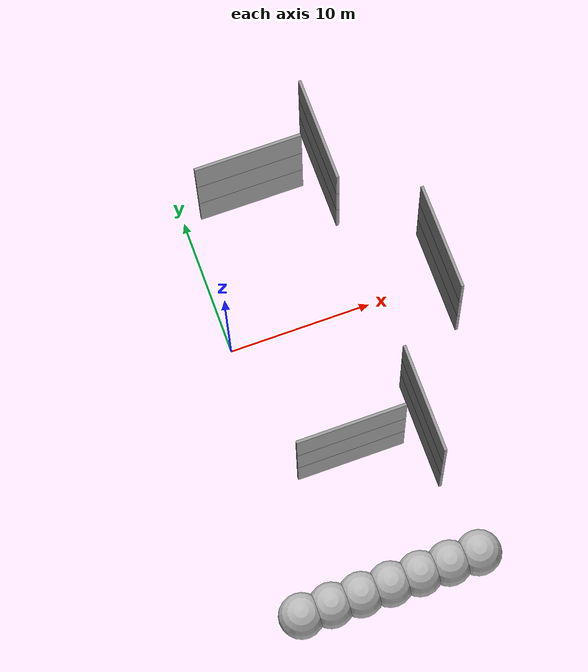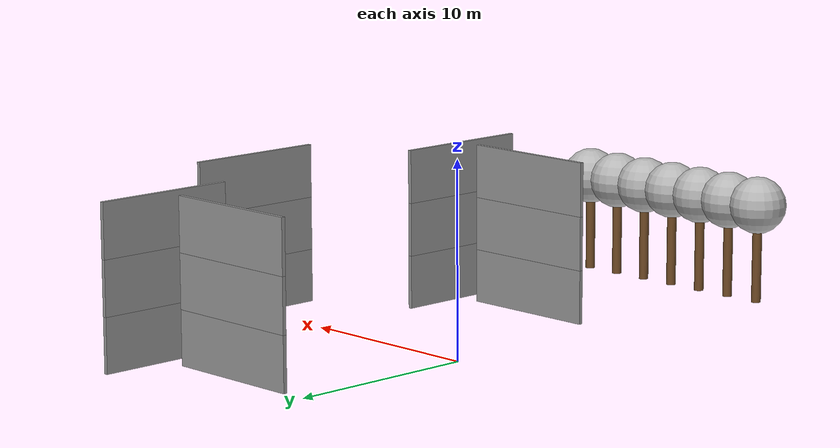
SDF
<sdf version="1.5">
 <world name="default">
  <model name="grey_wall_11">
   <static>1</static>
   <link name="link">
    <pose>0 0 1.4 0 -0 0</pose>
    <collision name="collision"><geometry><box><size>7.5 0.2 2.8</size></box></geometry></collision>
    <visual name="visual">
     <cast_shadows>0</cast_shadows>
     <geometry><box><size>7.5 0.2 2.8</size></box></geometry>
     <material>
      <script>
       <uri>model://grey_wall/materials/scripts</uri>
       <uri>model://grey_wall/materials/textures</uri>
       <name>vrc/grey_wall</name>
      </script>
     </material>
    </visual>
   </link>
   <pose>5.0 -10.0 0 0 -0 0</pose>
  </model>
  <model name="grey_wall_12">
   <static>1</static>
   <link name="link">
    <pose>0 0 1.4 0 -0 0</pose>
    <collision name="collision"><geometry><box><size>7.5 0.2 2.8</size></box></geometry></collision>
    <visual name="visual">
     <cast_shadows>0</cast_shadows>
     <geometry><box><size>7.5 0.2 2.8</size></box></geometry>
     <material>
      <script>
       <uri>model://grey_wall/materials/scripts</uri>
       <uri>model://grey_wall/materials/textures</uri>
       <name>vrc/grey_wall</name>
      </script>
     </material>
    </visual>
   </link>
   <pose>5.0 -10.0 2.8 0 -0 0</pose>
  </model>
  <model name="grey_wall_13">
   <static>1</static>
   <link name="link">
    <pose>0 0 1.4 0 -0 0</pose>
    <collision name="collision"><geometry><box><size>7.5 0.2 2.8</size></box></geometry></collision>
    <visual name="visual">
     <cast_shadows>0</cast_shadows>
     <geometry><box><size>7.5 0.2 2.8</size></box></geometry>
     <material>
      <script>
       <uri>model://grey_wall/materials/scripts</uri>
       <uri>model://grey_wall/materials/textures</uri>
       <name>vrc/grey_wall</name>
      </script>
     </material>
    </visual>
   </link>
   <pose>5.0 -10.0 5.6 0 -0 0</pose>
  </model>
  <model name="grey_wall_21">
   <static>1</static>
   <link name="link">
    <pose>0 0 1.4 0 -0 0</pose>
    <collision name="collision"><geometry><box><size>7.5 0.2 2.8</size></box></geometry></collision>
    <visual name="visual">
     <cast_shadows>0</cast_shadows>
     <geometry><box><size>7.5 0.2 2.8</size></box></geometry>
     <material>
      <script>
       <uri>model://grey_wall/materials/scripts</uri>
       <uri>model://grey_wall/materials/textures</uri>
       <name>vrc/grey_wall</name>
      </script>
     </material>
    </visual>
   </link>
   <pose>5.0 10.0 0 0 -0 0</pose>
  </model>
  <model name="grey_wall_22">
   <static>1</static>
   <link name="link">
    <pose>0 0 1.4 0 -0 0</pose>
    <collision name="collision"><geometry><box><size>7.5 0.2 2.8</size></box></geometry></collision>
    <visual name="visual">
     <cast_shadows>0</cast_shadows>
     <geometry><box><size>7.5 0.2 2.8</size></box></geometry>
     <material>
      <script>
       <uri>model://grey_wall/materials/scripts</uri>
       <uri>model://grey_wall/materials/textures</uri>
       <name>vrc/grey_wall</name>
      </script>
     </material>
    </visual>
   </link>
   <pose>5.0 10.0 2.8 0 -0 0</pose>
  </model>
  <model name="grey_wall_23">
   <static>1</static>
   <link name="link">
    <pose>0 0 1.4 0 -0 0</pose>
    <collision name="collision"><geometry><box><size>7.5 0.2 2.8</size></box></geometry></collision>
    <visual name="visual">
     <cast_shadows>0</cast_shadows>
     <geometry><box><size>7.5 0.2 2.8</size></box></geometry>
     <material>
      <script>
       <uri>model://grey_wall/materials/scripts</uri>
       <uri>model://grey_wall/materials/textures</uri>
       <name>vrc/grey_wall</name>
      </script>
     </material>
    </visual>
   </link>
   <pose>5.0 10.0 5.6 0 -0 0</pose>
  </model>
  <model name="grey_wall_41">
   <static>1</static>
   <link name="link">
    <pose>0 0 1.4 0 -0 0</pose>
    <collision name="collision"><geometry><box><size>7.5 0.2 2.8</size></box></geometry></collision>
    <visual name="visual">
     <cast_shadows>0</cast_shadows>
     <geometry><box><size>7.5 0.2 2.8</size></box></geometry>
     <material>
      <script>
       <uri>model://grey_wall/materials/scripts</uri>
       <uri>model://grey_wall/materials/textures</uri>
       <name>vrc/grey_wall</name>
      </script>
     </material>
    </visual>
   </link>
   <pose>10.0 -10.0 0 0 -0 1.57</pose>
  </model>
  <model name="grey_wall_42">
   <static>1</static>
   <link name="link">
    <pose>0 0 1.4 0 -0 0</pose>
    <collision name="collision"><geometry><box><size>7.5 0.2 2.8</size></box></geometry></collision>
    <visual name="visual">
     <cast_shadows>0</cast_shadows>
     <geometry><box><size>7.5 0.2 2.8</size></box></geometry>
     <material>
      <script>
       <uri>model://grey_wall/materials/scripts</uri>
       <uri>model://grey_wall/materials/textures</uri>
       <name>vrc/grey_wall</name>
      </script>
     </material>
    </visual>
   </link>
   <pose>10.0 -10.0 2.8 0 -0 1.57</pose>
  </model>
  <model name="grey_wall_43">
   <static>1</static>
   <link name="link">
    <pose>0 0 1.4 0 -0 0</pose>
    <collision name="collision"><geometry><box><size>7.5 0.2 2.8</size></box></geometry></collision>
    <visual name="visual">
     <cast_shadows>0</cast_shadows>
     <geometry><box><size>7.5 0.2 2.8</size></box></geometry>
     <material>
      <script>
       <uri>model://grey_wall/materials/scripts</uri>
       <uri>model://grey_wall/materials/textures</uri>
       <name>vrc/grey_wall</name>
      </script>
     </material>
    </visual>
   </link>
   <pose>10.0 -10.0 5.6 0 -0 1.57</pose>
  </model>
  <model name="grey_wall_61">
   <static>1</static>
   <link name="link">
    <pose>0 0 1.4 0 -0 0</pose>
    <collision name="collision"><geometry><box><size>7.5 0.2 2.8</size></box></geometry></collision>
    <visual name="visual">
     <cast_shadows>0</cast_shadows>
     <geometry><box><size>7.5 0.2 2.8</size></box></geometry>
     <material>
      <script>
       <uri>model://grey_wall/materials/scripts</uri>
       <uri>model://grey_wall/materials/textures</uri>
       <name>vrc/grey_wall</name>
      </script>
     </material>
    </visual>
   </link>
   <pose>10.0 10.0 0 0 -0 1.57</pose>
  </model>
  <model name="grey_wall_62">
   <static>1</static>
   <link name="link">
    <pose>0 0 1.4 0 -0 0</pose>
    <collision name="collision"><geometry><box><size>7.5 0.2 2.8</size></box></geometry></collision>
    <visual name="visual">
     <cast_shadows>0</cast_shadows>
     <geometry><box><size>7.5 0.2 2.8</size></box></geometry>
     <material>
      <script>
       <uri>model://grey_wall/materials/scripts</uri>
       <uri>model://grey_wall/materials/textures</uri>
       <name>vrc/grey_wall</name>
      </script>
     </material>
    </visual>
   </link>
   <pose>10.0 10.0 2.8 0 -0 1.57</pose>
  </model>
  <model name="grey_wall_63">
   <static>1</static>
   <link name="link">
    <pose>0 0 1.4 0 -0 0</pose>
    <collision name="collision"><geometry><box><size>7.5 0.2 2.8</size></box></geometry></collision>
    <visual name="visual">
     <cast_shadows>0</cast_shadows>
     <geometry><box><size>7.5 0.2 2.8</size></box></geometry>
     <material>
      <script>
       <uri>model://grey_wall/materials/scripts</uri>
       <uri>model://grey_wall/materials/textures</uri>
       <name>vrc/grey_wall</name>
      </script>
     </material>
    </visual>
   </link>
   <pose>10.0 10.0 5.6 0 -0 1.57</pose>
  </model>
  <model name="grey_wall_91">
   <static>1</static>
   <link name="link">
    <pose>0 0 1.4 0 -0 0</pose>
    <collision name="collision"><geometry><box><size>7.5 0.2 2.8</size></box></geometry></collision>
    <visual name="visual">
     <cast_shadows>0</cast_shadows>
     <geometry><box><size>7.5 0.2 2.8</size></box></geometry>
     <material>
      <script>
       <uri>model://grey_wall/materials/scripts</uri>
       <uri>model://grey_wall/materials/textures</uri>
       <name>vrc/grey_wall</name>
      </script>
     </material>
    </visual>
   </link>
   <pose>15.0 0.0 0 0 -0 1.57</pose>
  </model>
  <model name="grey_wall_92">
   <static>1</static>
   <link name="link">
    <pose>0 0 1.4 0 -0 0</pose>
    <collision name="collision"><geometry><box><size>7.5 0.2 2.8</size></box></geometry></collision>
    <visual name="visual">
     <cast_shadows>0</cast_shadows>
     <geometry><box><size>7.5 0.2 2.8</size></box></geometry>
     <material>
      <script>
       <uri>model://grey_wall/materials/scripts</uri>
       <uri>model://grey_wall/materials/textures</uri>
       <name>vrc/grey_wall</name>
      </script>
     </material>
    </visual>
   </link>
   <pose>15.0 0.0 2.8 0 -0 1.57</pose>
  </model>
  <model name="grey_wall_93">
   <static>1</static>
   <link name="link">
    <pose>0 0 1.4 0 -0 0</pose>
    <collision name="collision"><geometry><box><size>7.5 0.2 2.8</size></box></geometry></collision>
    <visual name="visual">
     <cast_shadows>0</cast_shadows>
     <geometry><box><size>7.5 0.2 2.8</size></box></geometry>
     <material>
      <script>
       <uri>model://grey_wall/materials/scripts</uri>
       <uri>model://grey_wall/materials/textures</uri>
       <name>vrc/grey_wall</name>
      </script>
     </material>
    </visual>
   </link>
   <pose>15.0 0.0 5.6 0 -0 1.57</pose>
  </model>
  <model name="tree_simple_9">
   <static>1</static>
   <link name="link">
    <pose>0 0 0.1 0 -0 0</pose>
    <collision name="collision_trunk">
     <pose>0 0 2 0 -0 0</pose>
     <geometry><cylinder><radius>0.25</radius><length>4</length></cylinder></geometry>
    </collision>
    <collision name="collision_treetop">
     <pose>0 0 5.2 0 -0 0</pose>
     <geometry><sphere><radius>1.5</radius></sphere></geometry>
    </collision>
    <visual name="trunk">
     <pose>0 0 2 0 -0 0</pose>
     <geometry><cylinder><radius>0.25</radius><length>4</length></cylinder></geometry>
     <material>
      <script>
       <uri>model://tree_simple/scripts</uri>
       <uri>model://tree_simple/materials/textures</uri>
       <name>TreeSimple/Trunk</name>
      </script>
     </material>
    </visual>
    <visual name="treetop">
     <pose>0 0 5.2 0 -0 0</pose>
     <geometry><sphere><radius>1.5</radius></sphere></geometry>
     <material>
      <script>
       <uri>model://tree_simple/scripts</uri>
       <uri>model://tree_simple/materials/textures</uri>
       <name>TreeSimple/Treetop</name>
      </script>
     </material>
    </visual>
   </link>
   <pose>-2 -20 0 0 0 0</pose>
  </model>
  <model name="tree_simple_10">
   <static>1</static>
   <link name="link">
    <pose>0 0 0.1 0 -0 0</pose>
    <collision name="collision_trunk">
     <pose>0 0 2 0 -0 0</pose>
     <geometry><cylinder><radius>0.25</radius><length>4</length></cylinder></geometry>
    </collision>
    <collision name="collision_treetop">
     <pose>0 0 5.2 0 -0 0</pose>
     <geometry><sphere><radius>1.5</radius></sphere></geometry>
    </collision>
    <visual name="trunk">
     <pose>0 0 2 0 -0 0</pose>
     <geometry><cylinder><radius>0.25</radius><length>4</length></cylinder></geometry>
     <material>
      <script>
       <uri>model://tree_simple/scripts</uri>
       <uri>model://tree_simple/materials/textures</uri>
       <name>TreeSimple/Trunk</name>
      </script>
     </material>
    </visual>
    <visual name="treetop">
     <pose>0 0 5.2 0 -0 0</pose>
     <geometry><sphere><radius>1.5</radius></sphere></geometry>
     <material>
      <script>
       <uri>model://tree_simple/scripts</uri>
       <uri>model://tree_simple/materials/textures</uri>
       <name>TreeSimple/Treetop</name>
      </script>
     </material>
    </visual>
   </link>
   <pose>0 -20 0 0 0 0</pose>
  </model>
  <model name="tree_simple_11">
   <static>1</static>
   <link name="link">
    <pose>0 0 0.1 0 -0 0</pose>
    <collision name="collision_trunk">
     <pose>0 0 2 0 -0 0</pose>
     <geometry><cylinder><radius>0.25</radius><length>4</length></cylinder></geometry>
    </collision>
    <collision name="collision_treetop">
     <pose>0 0 5.2 0 -0 0</pose>
     <geometry><sphere><radius>1.5</radius></sphere></geometry>
    </collision>
    <visual name="trunk">
     <pose>0 0 2 0 -0 0</pose>
     <geometry><cylinder><radius>0.25</radius><length>4</length></cylinder></geometry>
     <material>
      <script>
       <uri>model://tree_simple/scripts</uri>
       <uri>model://tree_simple/materials/textures</uri>
       <name>TreeSimple/Trunk</name>
      </script>
     </material>
    </visual>
    <visual name="treetop">
     <pose>0 0 5.2 0 -0 0</pose>
     <geometry><sphere><radius>1.5</radius></sphere></geometry>
     <material>
      <script>
       <uri>model://tree_simple/scripts</uri>
       <uri>model://tree_simple/materials/textures</uri>
       <name>TreeSimple/Treetop</name>
      </script>
     </material>
    </visual>
   </link>
   <pose>2 -20 0 0 0 0</pose>
  </model>
  <model name="tree_simple_12">
   <static>1</static>
   <link name="link">
    <pose>0 0 0.1 0 -0 0</pose>
    <collision name="collision_trunk">
     <pose>0 0 2 0 -0 0</pose>
     <geometry><cylinder><radius>0.25</radius><length>4</length></cylinder></geometry>
    </collision>
    <collision name="collision_treetop">
     <pose>0 0 5.2 0 -0 0</pose>
     <geometry><sphere><radius>1.5</radius></sphere></geometry>
    </collision>
    <visual name="trunk">
     <pose>0 0 2 0 -0 0</pose>
     <geometry><cylinder><radius>0.25</radius><length>4</length></cylinder></geometry>
     <material>
      <script>
       <uri>model://tree_simple/scripts</uri>
       <uri>model://tree_simple/materials/textures</uri>
       <name>TreeSimple/Trunk</name>
      </script>
     </material>
    </visual>
    <visual name="treetop">
     <pose>0 0 5.2 0 -0 0</pose>
     <geometry><sphere><radius>1.5</radius></sphere></geometry>
     <material>
      <script>
       <uri>model://tree_simple/scripts</uri>
       <uri>model://tree_simple/materials/textures</uri>
       <name>TreeSimple/Treetop</name>
      </script>
     </material>
    </visual>
   </link>
   <pose>4 -20 0 0 0 0</pose>
  </model>
  <model name="tree_simple_13">
   <static>1</static>
   <link name="link">
    <pose>0 0 0.1 0 -0 0</pose>
    <collision name="collision_trunk">
     <pose>0 0 2 0 -0 0</pose>
     <geometry><cylinder><radius>0.25</radius><length>4</length></cylinder></geometry>
    </collision>
    <collision name="collision_treetop">
     <pose>0 0 5.2 0 -0 0</pose>
     <geometry><sphere><radius>1.5</radius></sphere></geometry>
    </collision>
    <visual name="trunk">
     <pose>0 0 2 0 -0 0</pose>
     <geometry><cylinder><radius>0.25</radius><length>4</length></cylinder></geometry>
     <material>
      <script>
       <uri>model://tree_simple/scripts</uri>
       <uri>model://tree_simple/materials/textures</uri>
       <name>TreeSimple/Trunk</name>
      </script>
     </material>
    </visual>
    <visual name="treetop">
     <pose>0 0 5.2 0 -0 0</pose>
     <geometry><sphere><radius>1.5</radius></sphere></geometry>
     <material>
      <script>
       <uri>model://tree_simple/scripts</uri>
       <uri>model://tree_simple/materials/textures</uri>
       <name>TreeSimple/Treetop</name>
      </script>
     </material>
    </visual>
   </link>
   <pose>6 -20 0 0 0 0</pose>
  </model>
  <model name="tree_simple_14">
   <static>1</static>
   <link name="link">
    <pose>0 0 0.1 0 -0 0</pose>
    <collision name="collision_trunk">
     <pose>0 0 2 0 -0 0</pose>
     <geometry><cylinder><radius>0.25</radius><length>4</length></cylinder></geometry>
    </collision>
    <collision name="collision_treetop">
     <pose>0 0 5.2 0 -0 0</pose>
     <geometry><sphere><radius>1.5</radius></sphere></geometry>
    </collision>
    <visual name="trunk">
     <pose>0 0 2 0 -0 0</pose>
     <geometry><cylinder><radius>0.25</radius><length>4</length></cylinder></geometry>
     <material>
      <script>
       <uri>model://tree_simple/scripts</uri>
       <uri>model://tree_simple/materials/textures</uri>
       <name>TreeSimple/Trunk</name>
      </script>
     </material>
    </visual>
    <visual name="treetop">
     <pose>0 0 5.2 0 -0 0</pose>
     <geometry><sphere><radius>1.5</radius></sphere></geometry>
     <material>
      <script>
       <uri>model://tree_simple/scripts</uri>
       <uri>model://tree_simple/materials/textures</uri>
       <name>TreeSimple/Treetop</name>
      </script>
     </material>
    </visual>
   </link>
   <pose>8 -20 0 0 0 0</pose>
  </model>
  <model name="tree_simple_15">
   <static>1</static>
   <link name="link">
    <pose>0 0 0.1 0 -0 0</pose>
    <collision name="collision_trunk">
     <pose>0 0 2 0 -0 0</pose>
     <geometry><cylinder><radius>0.25</radius><length>4</length></cylinder></geometry>
    </collision>
    <collision name="collision_treetop">
     <pose>0 0 5.2 0 -0 0</pose>
     <geometry><sphere><radius>1.5</radius></sphere></geometry>
    </collision>
    <visual name="trunk">
     <pose>0 0 2 0 -0 0</pose>
     <geometry><cylinder><radius>0.25</radius><length>4</length></cylinder></geometry>
     <material>
      <script>
       <uri>model://tree_simple/scripts</uri>
       <uri>model://tree_simple/materials/textures</uri>
       <name>TreeSimple/Trunk</name>
      </script>
     </material>
    </visual>
    <visual name="treetop">
     <pose>0 0 5.2 0 -0 0</pose>
     <geometry><sphere><radius>1.5</radius></sphere></geometry>
     <material>
      <script>
       <uri>model://tree_simple/scripts</uri>
       <uri>model://tree_simple/materials/textures</uri>
       <name>TreeSimple/Treetop</name>
      </script>
     </material>
    </visual>
   </link>
   <pose>10 -20 0 0 0 0</pose>
  </model>
 </world>
</sdf>
